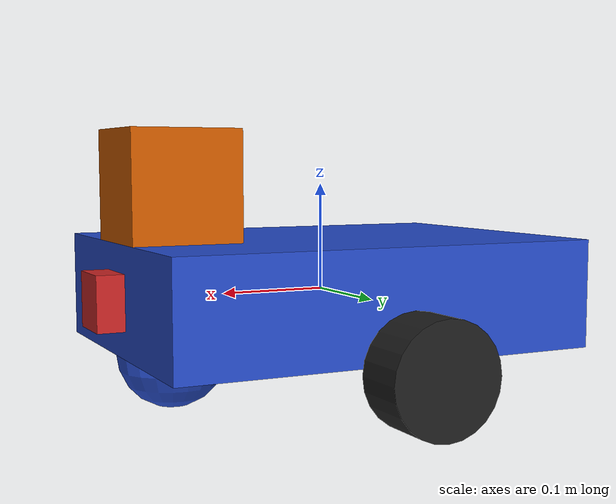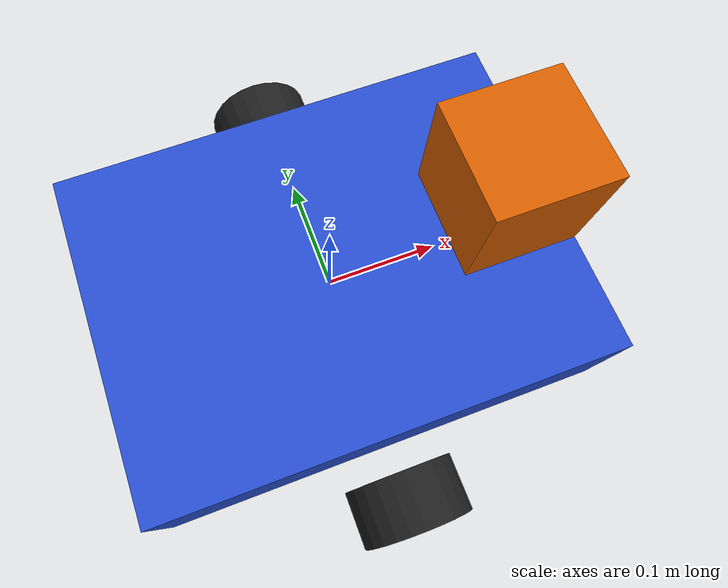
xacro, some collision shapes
<?xml version='1.0'?>

<robot name="my_robot" xmlns:xacro="http://www.ros.org/wiki/xacro">

  <xacro:include filename="$(find my_robot)/urdf/my_robot.gazebo" />

  <link name="robot_footprint"></link>

  <joint name="robot_footprint_joint" type="fixed">
    <origin xyz="0 0 0" rpy="0 0 0" />
    <parent link="robot_footprint"/>
    <child link="chassis" />
  </joint>

  <link name="chassis">
    <pose>0 0 0.1 0 0 0</pose>

    <inertial>
      <mass value="15.0"/>
      <origin xyz="0.0 0 0" rpy=" 0 0 0"/>
      <inertia
          ixx="0.1" ixy="0" ixz="0"
          iyy="0.1" iyz="0"
          izz="0.1"
      />
    </inertial>

    <collision name='collision'>
      <origin xyz="0 0 0" rpy=" 0 0 0"/>
      <geometry>
        <box size=".4 .3 .1"/>
      </geometry>
    </collision>

    <visual name='chassis_visual'>
      <origin xyz="0 0 0" rpy=" 0 0 0"/>
      <geometry>
        <box size=".4 .3 .1"/>
      </geometry>
    </visual>

    <collision name='back_caster_collision'>
      <origin xyz="-0.15 0 -0.05" rpy=" 0 0 0"/>
      <geometry>
        <sphere radius="0.0499"/>
      </geometry>
    </collision>

    <visual name='back_caster_visual'>
      <origin xyz="-0.15 0 -0.05" rpy=" 0 0 0"/>
      <geometry>
        <sphere radius="0.05"/>
      </geometry>
    </visual>

    <collision name='front_caster_collision'>
      <origin xyz="0.15 0 -0.05" rpy=" 0 0 0"/>
      <geometry>
        <sphere radius="0.0499"/>
      </geometry>
    </collision>

    <visual name='front_caster_visual'>
      <origin xyz="0.15 0 -0.05" rpy=" 0 0 0"/>
      <geometry>
        <sphere radius="0.05"/>
      </geometry>
    </visual>

</link>

  <link name="left_wheel">
    <inertial>
      <mass value="5.0"/>
      <origin xyz="0.0 0 0" rpy=" 0 1.5707 1.5707"/>
      <inertia
          ixx="0.1" ixy="0" ixz="0"
          iyy="0.1" iyz="0"
          izz="0.1"/>
    </inertial>

    <collision name='collision'>
      <origin xyz="0.0 0 0" rpy=" 0 1.5707 1.5707"/>
      <geometry>
        <cylinder radius="0.05" length="0.05"/>
      </geometry>
    </collision>

      <visual name='left_wheel_visual'>
        <origin xyz="0.0 0 0" rpy=" 0 1.5707 1.5707"/>
        <geometry>
        <cylinder radius="0.05" length="0.05"/>
        </geometry>
      </visual>
  </link>

<joint type="continuous" name="left_wheel_hinge">
    <origin xyz="0.0 0.20 -0.05" rpy="0 0 0"/>
    <child link="left_wheel"/>
    <parent link="chassis"/>
    <axis xyz="0 1 0" rpy="0 0 0"/>
    <limit effort="10000" velocity="1000"/>
    <dynamics damping="1.0" friction="1.0"/>
  </joint>

  <link name="right_wheel">
    <inertial>
      <mass value="5.0"/>
      <origin xyz="0.0 0 0" rpy=" 0 1.5707 1.5707"/>
      <inertia
          ixx="0.1" ixy="0" ixz="0"
          iyy="0.1" iyz="0"
          izz="0.1"/>
    </inertial>

    <collision name='collision'>
      <origin xyz="0.0 0 0" rpy=" 0 1.5707 1.5707"/>
      <geometry>
        <cylinder radius="0.05" length="0.05"/>
      </geometry>
    </collision>

      <visual name='right_wheel_visual'>
        <origin xyz="0.0 0 0" rpy=" 0 1.5707 1.5707"/>
        <geometry>
        <cylinder radius="0.05" length="0.05"/>
        </geometry>
      </visual>
  </link>

  <joint name="right_wheel_hinge" type="continuous">
    <origin xyz="0.0 -0.20 -0.05" rpy="0 0 0"/>
    <child link="right_wheel"/>
    <parent link="chassis"/>
    <axis xyz="0 1 0" rpy="0 0 0"/>
    <limit effort="10000" velocity="1000"/>
    <dynamics damping="1.0" friction="1.0"/>
  </joint>

  <link name = "camera">
    <inertial>
      <origin xyz="0 0 0" rpy = "0 0 0"/>
      <mass value = "0.1"/>
      <inertia
        ixx="1e-6" ixy="0" ixz="0"
        iyy="1e-6" iyz="0"
        izz="1e-6" />
      </inertial>

      <collision name= "collision">
        <origin xyz="0.0 0 0" rpy=" 0 0 0"/>
        <geometry>
          <box size ="0.05 0.05 0.05"/>
        </geometry>
      </collision>

        <visual name='camera_visual'>
          <origin xyz="0.0 0 0" rpy=" 0 0 0"/>
          <geometry>
          <box size ="0.05 0.05 0.05"/>
          </geometry>
        </visual>
    </link>

    <joint name="camera_joint" type="fixed">
        <origin xyz="0.20 0 0" rpy="0 0 0"/>
        <child link="camera"/>
        <parent link="chassis"/>
        <axis xyz="0 1 0" rpy="0 0 0"/>
      </joint>

      <link name = "hokuyo">
        <inertial>
          <origin xyz="0 0 0" rpy = "0 0 0"/>
          <mass value = "1e-5"/>
          <inertia
            ixx="1e-6" ixy="0" ixz="0"
            iyy="1e-6" iyz="0"
            izz="1e-6" />
          </inertial>

          <collision name= "collision">
            <origin xyz="0.0 0 0" rpy=" 0 0 0"/>
            <geometry>
              <box size ="0.1 0.1 0.1"/>
            </geometry>
          </collision>

            <visual name='hokuyo_visual'>
              <origin xyz="0.0 0 0" rpy=" 0 0 0"/>
              <geometry>
              <mesh filename ="package://my_robot/meshes/hokuyo.dae"/>
              </geometry>
            </visual>
        </link>

        <link name="camera_link_optical">
        </link>

        <joint name="camera_optical_joint" type="fixed">
          <origin xyz="0 0 0" rpy="-1.5707 0 -1.5707"/>
          <parent link="camera"/>
          <child link="camera_link_optical"/>
        </joint>

        <joint name="hokuyo_joint" type="fixed">
            <origin xyz="0.15 0 0.1" rpy="0 0 0"/>
            <child link="hokuyo"/>
            <parent link="chassis"/>
            <axis xyz="0 1 0" rpy="0 0 0"/>
          </joint>

          <gazebo reference="left_wheel">
            <material>Gazebo/Black</material>
          </gazebo>

          <gazebo reference="right_wheel">
            <material>Gazebo/Black</material>
          </gazebo>

          <gazebo reference="camera">
            <material>Gazebo/Red</material>
          </gazebo>

          <gazebo reference="chassis">
            <material>Gazebo/Blue</material>
          </gazebo>
</robot>
